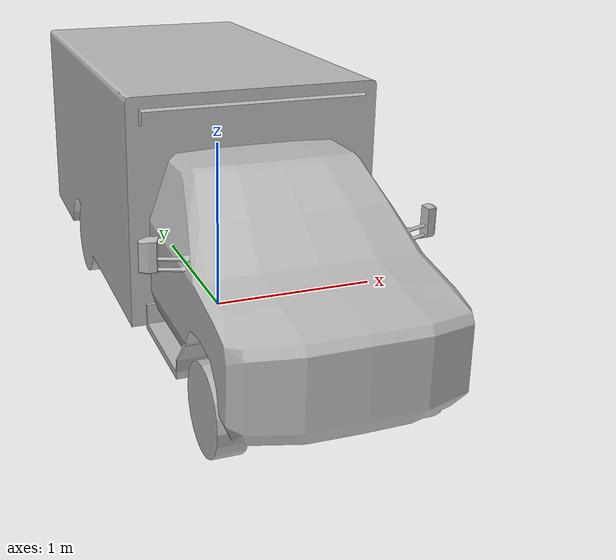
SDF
<?xml version="1.0" ?>
<sdf version="1.6">
    <model name="ambulance">
        <static>true</static>
        <link name="link">
            <collision name="collision">
                <geometry>
                    <mesh>
                        <scale>0.0254 0.0254 0.0254</scale>
                        <uri>meshes/ambulance.obj</uri>
                    </mesh>
                </geometry>
            </collision>
            <visual name="visual">
                <geometry>
                    <mesh>
                        <scale>0.0127 0.0127 0.0127</scale>
                        <uri>meshes/ambulance.obj</uri>
                    </mesh>
                </geometry>
            </visual>
        </link>
    </model>
</sdf>
